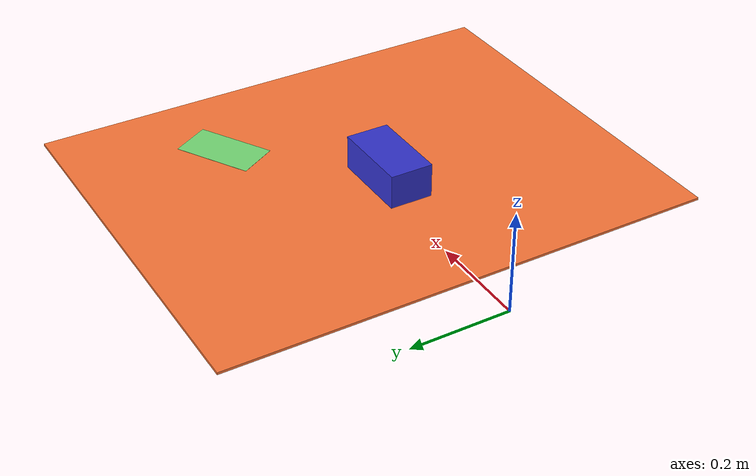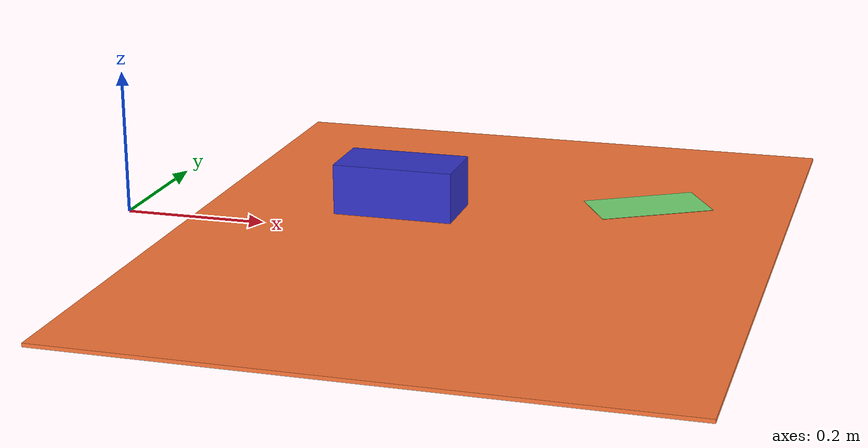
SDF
<?xml version="1.0"?>
<sdf version='1.9'>
  <world name='world_table'>
    <physics name='1ms' type='ignored'>
      <max_step_size>0.001</max_step_size>
      <real_time_factor>1</real_time_factor>
      <real_time_update_rate>1000</real_time_update_rate>
    </physics>

    <plugin filename="ignition-gazebo-physics-system" name="gz::sim::systems::Physics"/>
    <plugin filename="ignition-gazebo-user-commands-system" name="gz::sim::systems::UserCommands"/>
    <plugin filename="ignition-gazebo-scene-broadcaster-system" name="gz::sim::systems::SceneBroadcaster"/>
    <plugin filename='ignition-gazebo-contact-system' name='gz::sim::systems::Contact'/>
    <plugin filename="ignition-gazebo-sensors-system" name="gz::sim::systems::Sensors"><render_engine>ogre</render_engine></plugin>
    <!-- This file is NOT a plugin. It is simply a shared library loaded by libignition-gazebo-sensors-system.so plugin -->

    <gravity>0 0 -9.8</gravity>
    <magnetic_field>6e-06 2.3e-05 -4.2e-05</magnetic_field>
    <atmosphere type='adiabatic'/>
    <scene>
      <ambient>0.4 0.4 0.4 1</ambient>
      <background>0.7 0.7 0.7 1</background>
      <shadows>true</shadows>
    </scene>

    <!-- Replace prefab table with a simple 10x10x1 m box table -->
    <model name="table_box">
      <!-- Place so the base sits on ground: z = height/2 -->
      <pose>0.5 0.0 0.0025 0 0 0</pose> # TODO: real test
      <static>true</static>
      <link name="table_link">
        <collision name="collision">
          <geometry>
            <box>
              <size>0.8 1.0 0.005</size> # TODO: real test
            </box>
          </geometry>
          <surface>
            <friction>
              <ode>
                <mu>0.300</mu>
                <mu2>0.300</mu2>
                <fdir1>0 0 0</fdir1>
                <slip1>0.0</slip1>
                <slip2>0.0</slip2>
              </ode>
            </friction>
            <contact>
              <ode>
                <kp>1000000.0</kp>
                <kd>100.0</kd>
                <min_depth>0.0001</min_depth>
                <max_vel>100.0</max_vel>
                <fdir1>0 0 0</fdir1>
                <mu>0.300</mu>
                <mu2>0.300</mu2>
                <slip1>0.0</slip1>
                <slip2>0.0</slip2>
              </ode>
            </contact>
            <bounce>
              <restitution_coefficient>0.0</restitution_coefficient>
              <threshold>0.001</threshold>
            </bounce>
          </surface>
        </collision>
        <visual name="visual">
          <geometry>
            <box>
              <size>0.8 1.0 0.005</size> # TODO: real test
            </box>
          </geometry>
          <material>
            <ambient>1.0 0.471 0.224 1.0</ambient>
            <diffuse>1.0 0.471 0.224 1.0</diffuse>
            <specular>0.5 0.235 0.112 1.0</specular>
          </material>
        </visual>
        <inertial>
          <mass>10.0</mass>
          <inertia>
            <ixx>0.1</ixx>
            <ixy>0</ixy>
            <ixz>0</ixz>
            <iyy>0.1</iyy>
            <iyz>0</iyz>
            <izz>0.1</izz>
          </inertia>
        </inertial>
      </link>

      <!-- Contact sensor for table surface - removed as not compatible with Ignition Gazebo -->
    </model>

    <!-- Bare minimal block -->

    <!-- Bare minimal block with state-publisher plugin -->
    <model name="block">
      <pose>0.400 0.000 0.0705 0 0 0</pose>
      <static>false</static>
      <link name="link">
        <collision name="collision">
          <geometry>
            <box>
              <size>0.162 0.086 0.068</size>
            </box>
          </geometry>
          <surface>
            <friction>
              <ode>
                <mu>0.300</mu>
                <mu2>0.300</mu2>
                <fdir1>0 0 0</fdir1>
                <slip1>0.0</slip1>
                <slip2>0.0</slip2>
              </ode>
            </friction>
            <contact>
              <ode>
                <kp>1000000.0</kp>
                <kd>100.0</kd>
                <min_depth>0.0001</min_depth>
                <max_vel>100.0</max_vel>
                <fdir1>0 0 0</fdir1>
                <mu>0.300</mu>
                <mu2>0.300</mu2>
                <slip1>0.0</slip1>
                <slip2>0.0</slip2>
              </ode>
            </contact>
            <bounce>
              <restitution_coefficient>0.1</restitution_coefficient>
              <threshold>0.001</threshold>
            </bounce>
          </surface>
        </collision>
        <visual name="visual">
          <geometry>
            <box>
              <size>0.162 0.086 0.068</size>
            </box>
          </geometry>
          <material>
            <ambient>0.2 0.2 0.8 1.0</ambient>
            <diffuse>0.2 0.2 0.8 1.0</diffuse>
            <specular>0.1 0.1 0.4 1.0</specular>
          </material>
        </visual>
        <inertial>
          <mass>0.25</mass>
          <inertia>
            <ixx>0.0001</ixx>
            <ixy>0</ixy>
            <ixz>0</ixz>
            <iyy>0.0001</iyy>
            <iyz>0</iyz>
            <izz>0.0001</izz>
          </inertia>
        </inertial>
      </link>

      <!-- PosePublisher moved to world level for better compatibility -->

      <!-- Contact sensor for manipulation feedback - removed as not compatible with Ignition Gazebo -->
      <plugin filename="ignition-gazebo-pose-publisher-system" name="gz::sim::systems::PosePublisher">
        <publish_link_pose>false</publish_link_pose>
        <publish_visual_pose>false</publish_visual_pose>
        <publish_collision_pose>false</publish_collision_pose>
        <publish_sensor_pose>false</publish_sensor_pose>
        <publish_model_pose>true</publish_model_pose>
        <publish_nested_model_pose>true</publish_nested_model_pose>
        <use_pose_vector_msg>true</use_pose_vector_msg>
        <update_frequency>100</update_frequency>
        <static_publisher>false</static_publisher>
        <static_update_frequency>100</static_update_frequency>
      </plugin>
    </model>

    <!-- Goal area for manipulation target -->
    <model name="goal">

      <pose rotation_format="euler_rpy">0.7 0.2 0.005 0 0 0.523</pose> # TODO: real test
      <static>true</static>

      <link name="link">
        <!-- No collision geometry - purely visual -->
        <visual name="visual">
          <geometry>
            <box>
              <size>0.162 0.086 0.001</size>
            </box>
          </geometry>
          <material>
            <ambient>0.466 0.867 0.466 1.0</ambient>
            <diffuse>0.466 0.867 0.466 1.0</diffuse>
            <specular>0.233 0.433 0.233 1.0</specular>
          </material>
        </visual>
        <!-- Minimal inertial properties for static object -->
        <inertial>
          <mass>0.001</mass>
          <inertia>
            <ixx>0.000001</ixx>
            <ixy>0</ixy>
            <ixz>0</ixz>
            <iyy>0.000001</iyy>
            <iyz>0</iyz>
            <izz>0.000001</izz>
          </inertia>
        </inertial>
      </link>
    </model>

    <light name='sun' type='directional'>
      <pose>0 0 10 0 -0 0</pose>
      <cast_shadows>true</cast_shadows>
      <intensity>1</intensity>
      <direction>-0.5 0.1 -0.9</direction>
      <diffuse>0.8 0.8 0.8 1</diffuse>
      <specular>0.2 0.2 0.2 1</specular>
      <attenuation>
        <range>1000</range>
        <linear>0.01</linear>
        <constant>0.90000000000000002</constant>
        <quadratic>0.001</quadratic>
      </attenuation>
      <spot>
        <inner_angle>0</inner_angle>
        <outer_angle>0</outer_angle>
        <falloff>0</falloff>
      </spot>
    </light>
  </world>
</sdf>
